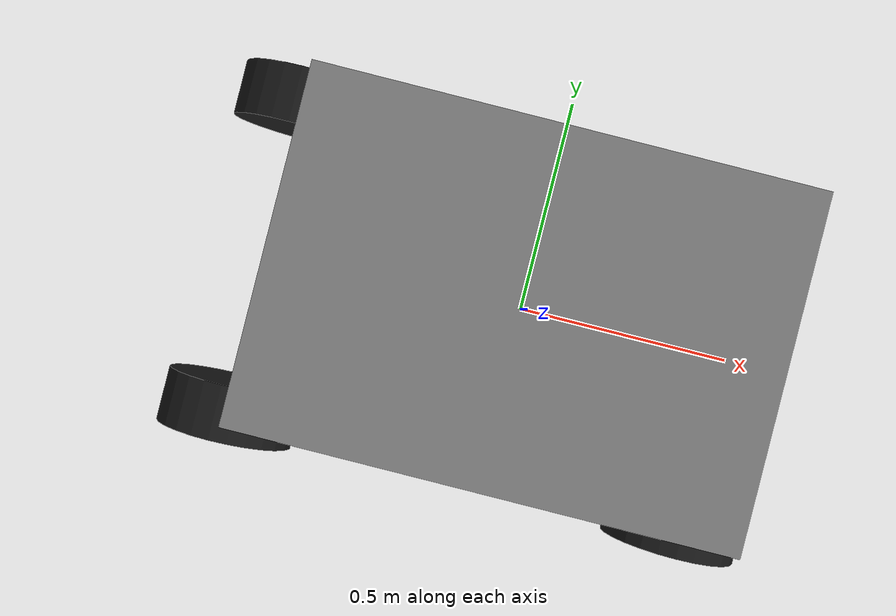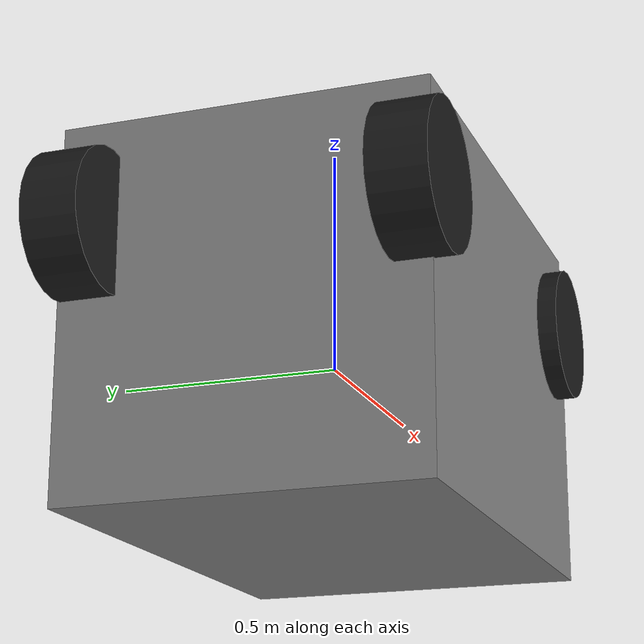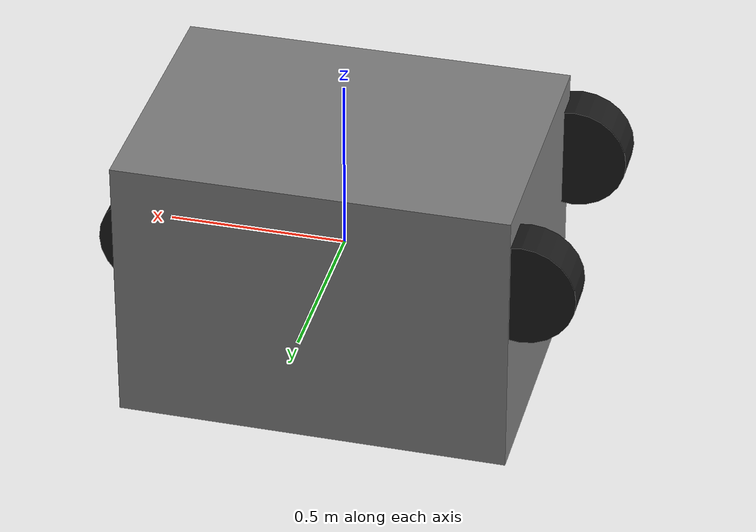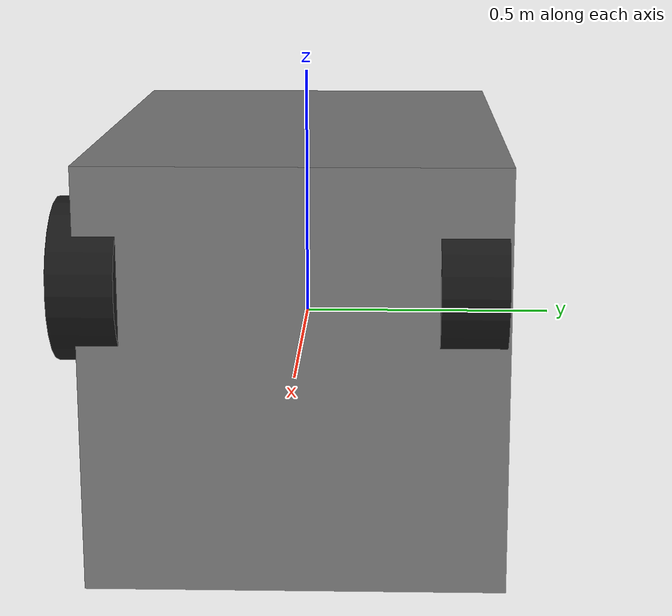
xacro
<?xml version="1.0"?>
<robot xmlns:xacro="http://wiki.ros.org/xacro" name="rover2025_base">

  <!-- Properties -->
  <xacro:property name="wheel_radius" value="0.15"/>
  <xacro:property name="wheel_width" value="0.12"/>
  <xacro:property name="track" value="0.6"/>
  <xacro:property name="wheelbase" value="0.8"/>

  <!-- Material definitions -->
  <material name="gray">
    <color rgba="0.5 0.5 0.5 1.0"/>
  </material>

  <material name="black">
    <color rgba="0.1 0.1 0.1 1.0"/>
  </material>

  <!-- Base structure (simplified from original URDF) -->
  <link name="robot_root">
    <collision name="body_collision">
      <origin rpy="0 0 0" xyz="-0.01465 -0.00549 0.16037"/>
      <geometry>
        <box size="1.22213 0.86180 0.62853"/>
      </geometry>
    </collision>
  </link>

  <link name="robot_base">
    <visual name="body">
      <material name="gray"/>
      <origin rpy="0 0 0" xyz="0 0 0"/>
      <geometry>
        <box size="1.09671 0.77336 0.78564"/>
      </geometry>
    </visual>
  </link>

  <joint name="robot_base_joint" type="fixed">
    <origin rpy="0 0 0" xyz="0 0 -0.0005"/>
    <parent link="robot_root"/>
    <child link="robot_base"/>
  </joint>

  <!-- Camera mount -->
  <link name="new_link.000">
    <sensor name="rgbd" type="camera">
      <origin rpy="0 0 0" xyz="0 0 0"/>
      <camera>
        <image>
          <width>1080</width>
          <height>1920</height>
          <hfov>1.5708</hfov>
        </image>
      </camera>
    </sensor>
  </link>

  <joint name="camera1" type="fixed">
    <origin rpy="-0.00000 1.57080 0.00000" xyz="0.33301 -0.09643 0.81950"/>
    <parent link="robot_root"/>
    <child link="new_link.000"/>
  </joint>

  <!-- GPS mount -->
  <link name="gps">
    <sensor name="gps.001" type="GPS"/>
  </link>

  <joint name="gps_locator" type="fixed">
    <origin rpy="0.00000 0.00000 0.00000" xyz="0.09323 0.00000 0.65743"/>
    <parent link="robot_root"/>
    <child link="gps"/>
    <axis xyz="0.00000 0.00000 1.00000"/>
  </joint>

  <!-- Wheel steering joints (from original URDF) -->
  <joint name="rotate_L_back" type="revolute">
    <limit lower="-2.96706" upper="2.96706" effort="0.00000" velocity="0.00000"/>
    <origin rpy="0 0 0" xyz="0.43705 -0.37063 0.32476"/>
    <parent link="robot_base"/>
    <child link="robot_wheel_l_front_actuator_link.005"/>
    <axis xyz="0 0 1"/>
  </joint>

  <joint name="rotate_L_front" type="revolute">
    <limit lower="-2.96706" upper="2.96706" effort="0.00000" velocity="0.00000"/>
    <origin rpy="0 0 0" xyz="-0.57753 -0.37063 0.32476"/>
    <parent link="robot_base"/>
    <child link="robot_wheel_l_front_actuator_link.003"/>
    <axis xyz="0 0 1"/>
  </joint>

  <joint name="rotate_R_back" type="revolute">
    <limit lower="-2.96706" upper="2.96706" effort="0.00000" velocity="0.00000"/>
    <origin rpy="0 0 -3.14159" xyz="0.43705 0.32063 0.32476"/>
    <parent link="robot_base"/>
    <child link="robot_wheel_l_front_actuator_link.011"/>
    <axis xyz="0 0 1"/>
  </joint>

  <joint name="rotate_R_front" type="revolute">
    <limit lower="-2.96706" upper="2.96706" effort="0.00000" velocity="0.00000"/>
    <origin rpy="0 0 -3.14159" xyz="-0.57753 0.32063 0.32476"/>
    <parent link="robot_base"/>
    <child link="robot_wheel_l_front_actuator_link.008"/>
    <axis xyz="0 0 1"/>
  </joint>

  <!-- Wheel actuator links (simplified) -->
  <link name="robot_wheel_l_front_actuator_link.003">
    <inertial>
      <inertia ixx="0.001" ixy="0.0" ixz="0.0" iyy="0.001" iyz="0.0" izz="0.001"/>
      <mass value="1.0"/>
    </inertial>
  </link>

  <link name="robot_wheel_l_front_actuator_link.005">
    <inertial>
      <inertia ixx="0.001" ixy="0.0" ixz="0.0" iyy="0.001" iyz="0.0" izz="0.001"/>
      <mass value="1.0"/>
    </inertial>
  </link>

  <link name="robot_wheel_l_front_actuator_link.008">
    <inertial>
      <inertia ixx="0.001" ixy="0.0" ixz="0.0" iyy="0.001" iyz="0.0" izz="0.001"/>
      <mass value="1.0"/>
    </inertial>
  </link>

  <link name="robot_wheel_l_front_actuator_link.011">
    <inertial>
      <inertia ixx="0.001" ixy="0.0" ixz="0.0" iyy="0.001" iyz="0.0" izz="0.001"/>
      <mass value="1.0"/>
    </inertial>
  </link>

  <!-- Wheel drive joints -->
  <joint name="wheel_L_front" type="continuous">
    <limit effort="0.0" velocity="0.0"/>
    <origin rpy="0 0 0" xyz="0 0 -0.15555"/>
    <parent link="robot_wheel_l_front_actuator_link.003"/>
    <child link="robot_wheel_l_front_actuator_link.004"/>
    <axis xyz="0 -1 0"/>
  </joint>

  <joint name="wheel_L_back" type="continuous">
    <limit effort="0.0" velocity="0.0"/>
    <origin rpy="0 0 0" xyz="0 0 -0.15555"/>
    <parent link="robot_wheel_l_front_actuator_link.005"/>
    <child link="robot_wheel_l_front_actuator_link.006"/>
    <axis xyz="0 -1 0"/>
  </joint>

  <joint name="wheel_R_front" type="continuous">
    <limit effort="0.0" velocity="0.0"/>
    <origin rpy="0 0 0" xyz="0 0 -0.15555"/>
    <parent link="robot_wheel_l_front_actuator_link.008"/>
    <child link="robot_wheel_l_front_actuator_link.009"/>
    <axis xyz="0 -1 0"/>
  </joint>

  <joint name="wheel_R_back" type="continuous">
    <limit effort="0.0" velocity="0.0"/>
    <origin rpy="0 0 0" xyz="0 0 -0.15555"/>
    <parent link="robot_wheel_l_front_actuator_link.011"/>
    <child link="robot_wheel_l_front_actuator_link.012"/>
    <axis xyz="0 -1 0"/>
  </joint>

  <!-- Wheel links (simplified) -->
  <link name="robot_wheel_l_front_actuator_link.004">
    <collision name="wheel_l_front_collision">
      <origin rpy="1.5708 0 0" xyz="0 0 0"/>
      <geometry>
        <cylinder radius="0.15" length="0.12"/>
      </geometry>
    </collision>
    <visual name="wheel_l_front">
      <material name="black"/>
      <origin rpy="1.5708 0 0" xyz="0 0 0"/>
      <geometry>
        <cylinder radius="0.15" length="0.12"/>
      </geometry>
    </visual>
    <inertial>
      <mass value="3.0"/>
      <inertia ixx="0.05" ixy="0.0" ixz="0.0" iyy="0.05" iyz="0.0" izz="0.025"/>
    </inertial>
  </link>

  <link name="robot_wheel_l_front_actuator_link.006">
    <collision name="wheel_l_back_collision">
      <origin rpy="1.5708 0 0" xyz="0 0 0"/>
      <geometry>
        <cylinder radius="0.15" length="0.12"/>
      </geometry>
    </collision>
    <visual name="wheel_l_back">
      <material name="black"/>
      <origin rpy="1.5708 0 0" xyz="0 0 0"/>
      <geometry>
        <cylinder radius="0.15" length="0.12"/>
      </geometry>
    </visual>
    <inertial>
      <mass value="3.0"/>
      <inertia ixx="0.05" ixy="0.0" ixz="0.0" iyy="0.05" iyz="0.0" izz="0.025"/>
    </inertial>
  </link>

  <link name="robot_wheel_l_front_actuator_link.009">
    <collision name="wheel_r_front_collision">
      <origin rpy="1.5708 0 0" xyz="0 0 0"/>
      <geometry>
        <cylinder radius="0.15" length="0.12"/>
      </geometry>
    </collision>
    <visual name="wheel_r_front">
      <material name="black"/>
      <origin rpy="1.5708 0 0" xyz="0 0 0"/>
      <geometry>
        <cylinder radius="0.15" length="0.12"/>
      </geometry>
    </visual>
    <inertial>
      <mass value="3.0"/>
      <inertia ixx="0.05" ixy="0.0" ixz="0.0" iyy="0.05" iyz="0.0" izz="0.025"/>
    </inertial>
  </link>

  <link name="robot_wheel_l_front_actuator_link.012">
    <collision name="wheel_r_back_collision">
      <origin rpy="1.5708 0 0" xyz="0 0 0"/>
      <geometry>
        <cylinder radius="0.15" length="0.12"/>
      </geometry>
    </collision>
    <visual name="wheel_r_back">
      <material name="black"/>
      <origin rpy="1.5708 0 0" xyz="0 0 0"/>
      <geometry>
        <cylinder radius="0.15" length="0.12"/>
      </geometry>
    </visual>
    <inertial>
      <mass value="3.0"/>
      <inertia ixx="0.05" ixy="0.0" ixz="0.0" iyy="0.05" iyz="0.0" izz="0.025"/>
    </inertial>
  </link>

</robot>
